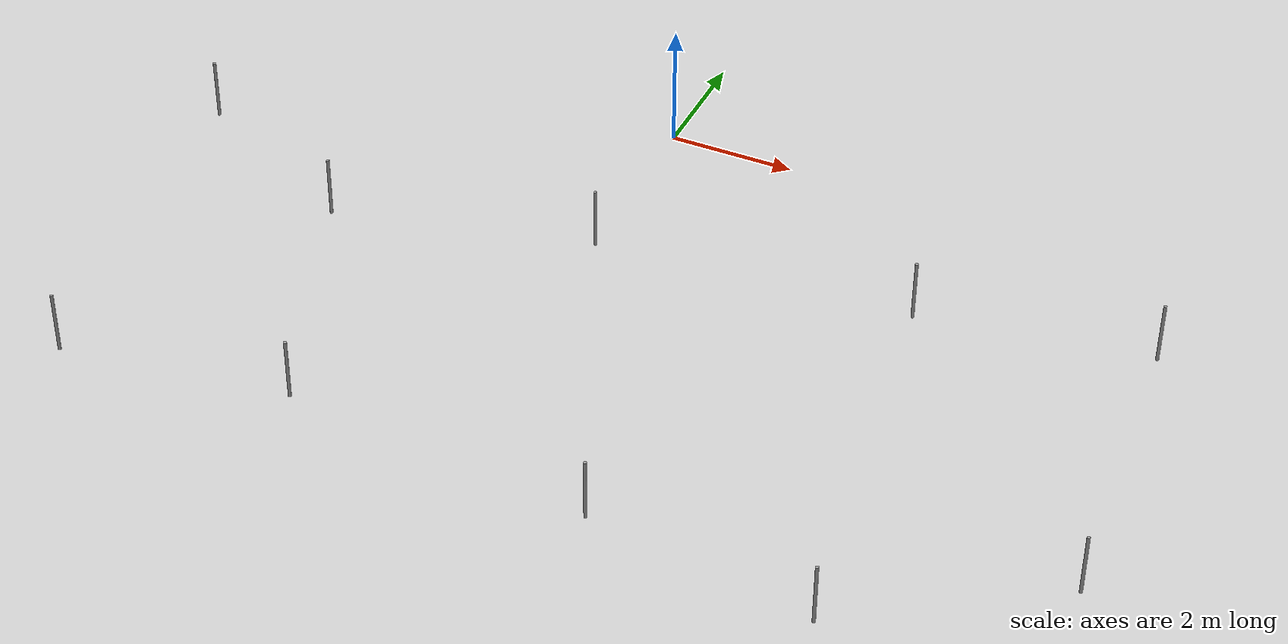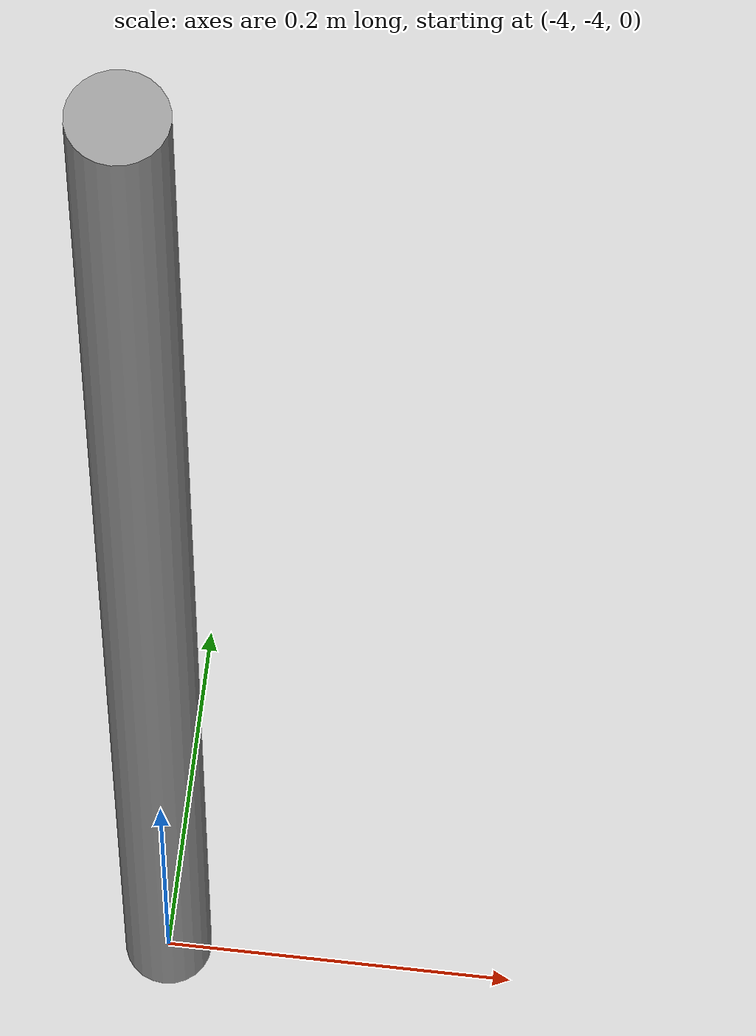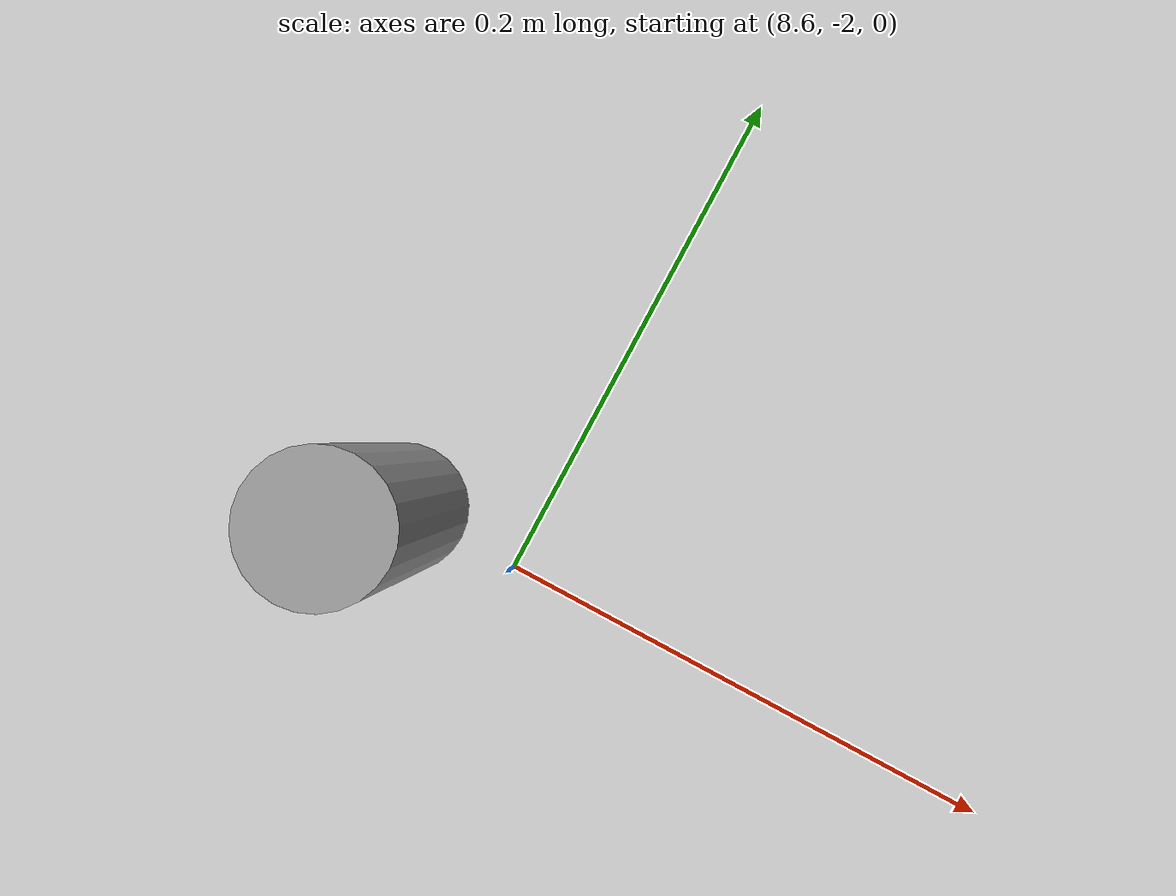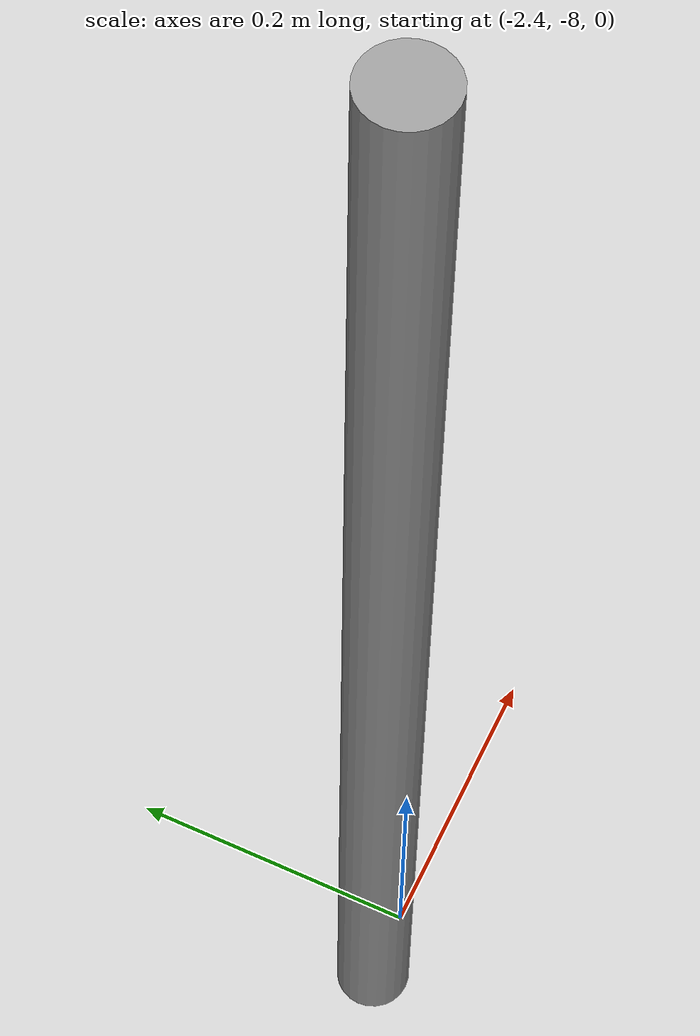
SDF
<sdf version="1.4">
 <world name="default">
  <light name="sun" type="directional">
   <pose>0 0 10 0 -0 0</pose>
   <diffuse>0.8 0.8 0.8 1</diffuse>
   <specular>0.2 0.2 0.2 1</specular>
   <attenuation>
    <range>1000</range>
    <constant>0.9</constant>
    <linear>0.01</linear>
    <quadratic>0.001</quadratic>
   </attenuation>
   <direction>-0.5 0.1 -0.9</direction>
  </light>
  <model name="ground_plane">
   <static>1</static>
   <link name="link">
    <collision name="collision">
     <geometry><plane><normal>0 0 1</normal><size>100 100</size></plane></geometry>
     <surface><friction><ode><mu>100</mu><mu2>50</mu2></ode></friction></surface>
    </collision>
    <visual name="visual">
     <cast_shadows>0</cast_shadows>
     <geometry><plane><normal>0 0 1</normal><size>100 100</size></plane></geometry>
     <material>
      <script><uri>file://media/materials/scripts/gazebo.material</uri><name>Gazebo/Grey</name></script>
     </material>
    </visual>
    <velocity_decay><linear>0</linear><angular>0</angular></velocity_decay>
   </link>
  </model>
  <physics type="ode">
   <max_step_size>0.001</max_step_size>
   <real_time_factor>1</real_time_factor>
   <real_time_update_rate>1000</real_time_update_rate>
   <gravity>0 0 -9.8</gravity>
  </physics>
  <scene><ambient>0.4 0.4 0.4 1</ambient><background>0.7 0.7 0.7 1</background><shadows>1</shadows></scene>
  <spherical_coordinates>
   <surface_model>EARTH_WGS84</surface_model>
   <latitude_deg>0</latitude_deg>
   <longitude_deg>0</longitude_deg>
   <elevation>0</elevation>
   <heading_deg>0</heading_deg>
  </spherical_coordinates>
  <model name="unit_cylinder_1">
   <pose>-6.90224 -2.49737 0.5 -2e-06 -2.1e-05 -1.2e-05</pose>
   <link name="link">
    <inertial>
     <mass>1</mass>
     <inertia><ixx>1</ixx><ixy>0</ixy><ixz>0</ixz><iyy>1</iyy><iyz>0</iyz><izz>1</izz></inertia>
    </inertial>
    <collision name="collision">
     <geometry><cylinder><radius>0.025</radius><length>1</length></cylinder></geometry>
    </collision>
    <visual name="visual">
     <geometry><cylinder><radius>0.025</radius><length>1</length></cylinder></geometry>
     <material>
      <script><uri>file://media/materials/scripts/gazebo.material</uri><name>Gazebo/Grey</name></script>
     </material>
    </visual>
    <velocity_decay><linear>0</linear><angular>0</angular></velocity_decay>
   </link>
   <static>0</static>
  </model>
  <model name="unit_cylinder_88">
   <pose>2.44618 -8.47201 0.5 -2e-06 -7e-06 -1.3e-05</pose>
   <link name="link">
    <inertial>
     <mass>1</mass>
     <inertia><ixx>1</ixx><ixy>0</ixy><ixz>0</ixz><iyy>1</iyy><iyz>0</iyz><izz>1</izz></inertia>
    </inertial>
    <collision name="collision">
     <geometry><cylinder><radius>0.025</radius><length>1</length></cylinder></geometry>
    </collision>
    <visual name="visual">
     <geometry><cylinder><radius>0.025</radius><length>1</length></cylinder></geometry>
     <material>
      <script><uri>file://media/materials/scripts/gazebo.material</uri><name>Gazebo/Grey</name></script>
     </material>
    </visual>
    <velocity_decay><linear>0</linear><angular>0</angular></velocity_decay>
   </link>
   <static>0</static>
  </model>
  <model name="unit_cylinder_33">
   <pose>0.024994 -3.00002 0.5 2e-06 9e-06 -4.1e-05</pose>
   <link name="link">
    <inertial>
     <mass>1</mass>
     <inertia><ixx>1</ixx><ixy>0</ixy><ixz>0</ixz><iyy>1</iyy><iyz>0</iyz><izz>1</izz></inertia>
    </inertial>
    <collision name="collision">
     <geometry><cylinder><radius>0.025</radius><length>1</length></cylinder></geometry>
    </collision>
    <visual name="visual">
     <geometry><cylinder><radius>0.025</radius><length>1</length></cylinder></geometry>
     <material>
      <script><uri>file://media/materials/scripts/gazebo.material</uri><name>Gazebo/Grey</name></script>
     </material>
    </visual>
    <velocity_decay><linear>0</linear><angular>0</angular></velocity_decay>
   </link>
   <static>0</static>
  </model>
  <model name="unit_cylinder_44">
   <pose>5 -2.59126 0.499991 -1e-06 -1e-06 -2e-06</pose>
   <link name="link">
    <inertial>
     <mass>1</mass>
     <inertia><ixx>1</ixx><ixy>0</ixy><ixz>0</ixz><iyy>1</iyy><iyz>0</iyz><izz>1</izz></inertia>
    </inertial>
    <collision name="collision">
     <geometry><cylinder><radius>0.025</radius><length>1</length></cylinder></geometry>
    </collision>
    <visual name="visual">
     <geometry><cylinder><radius>0.025</radius><length>1</length></cylinder></geometry>
     <material>
      <script><uri>file://media/materials/scripts/gazebo.material</uri><name>Gazebo/Grey</name></script>
     </material>
    </visual>
    <velocity_decay><linear>0</linear><angular>0</angular></velocity_decay>
   </link>
   <static>0</static>
  </model>
  <model name="unit_cylinder_66">
   <pose>-6 -8.51314 0.5 3.23117e-27 8e-06 2e-06</pose>
   <link name="link">
    <inertial>
     <mass>1</mass>
     <inertia><ixx>1</ixx><ixy>0</ixy><ixz>0</ixz><iyy>1</iyy><iyz>0</iyz><izz>1</izz></inertia>
    </inertial>
    <collision name="collision">
     <geometry><cylinder><radius>0.025</radius><length>1</length></cylinder></geometry>
    </collision>
    <visual name="visual">
     <geometry><cylinder><radius>0.025</radius><length>1</length></cylinder></geometry>
     <material>
      <script><uri>file://media/materials/scripts/gazebo.material</uri><name>Gazebo/Grey</name></script>
     </material>
    </visual>
    <velocity_decay><linear>0</linear><angular>0</angular></velocity_decay>
   </link>
   <static>0</static>
  </model>
  <model name="unit_cylinder_10">
   <pose>9 -7 0.5 -3e-06 4e-06 -3e-06</pose>
   <link name="link">
    <inertial>
     <mass>1</mass>
     <inertia><ixx>1</ixx><ixy>0</ixy><ixz>0</ixz><iyy>1</iyy><iyz>0</iyz><izz>1</izz></inertia>
    </inertial>
    <collision name="collision">
     <geometry><cylinder><radius>0.025</radius><length>1</length></cylinder></geometry>
    </collision>
    <visual name="visual">
     <geometry><cylinder><radius>0.025</radius><length>1</length></cylinder></geometry>
     <material>
      <script><uri>file://media/materials/scripts/gazebo.material</uri><name>Gazebo/Grey</name></script>
     </material>
    </visual>
    <velocity_decay><linear>0</linear><angular>0</angular></velocity_decay>
   </link>
   <static>0</static>
  </model>
  <model name="unit_cylinder_77">
   <pose>-2.4458 -8 0.499991 1e-06 4e-06 -1.6e-05</pose>
   <link name="link">
    <inertial>
     <mass>1</mass>
     <inertia><ixx>1</ixx><ixy>0</ixy><ixz>0</ixz><iyy>1</iyy><iyz>0</iyz><izz>1</izz></inertia>
    </inertial>
    <collision name="collision">
     <geometry><cylinder><radius>0.025</radius><length>1</length></cylinder></geometry>
    </collision>
    <visual name="visual">
     <geometry><cylinder><radius>0.025</radius><length>1</length></cylinder></geometry>
     <material>
      <script><uri>file://media/materials/scripts/gazebo.material</uri><name>Gazebo/Grey</name></script>
     </material>
    </visual>
    <velocity_decay><linear>0</linear><angular>0</angular></velocity_decay>
   </link>
   <static>0</static>
  </model>
  <model name="unit_cylinder_2">
   <pose>-3.99999 -4 0.5 -3e-06 2e-05 3e-06</pose>
   <link name="link">
    <inertial>
     <mass>1</mass>
     <inertia><ixx>1</ixx><ixy>0</ixy><ixz>0</ixz><iyy>1</iyy><iyz>0</iyz><izz>1</izz></inertia>
    </inertial>
    <collision name="collision">
     <geometry><cylinder><radius>0.025</radius><length>1</length></cylinder></geometry>
    </collision>
    <visual name="visual">
     <geometry><cylinder><radius>0.025</radius><length>1</length></cylinder></geometry>
     <material>
      <script><uri>file://media/materials/scripts/gazebo.material</uri><name>Gazebo/Grey</name></script>
     </material>
    </visual>
    <velocity_decay><linear>0</linear><angular>0</angular></velocity_decay>
   </link>
   <static>0</static>
  </model>
  <model name="unit_cylinder_55">
   <pose>8.55184 -2 0.5 -2e-06 -2e-06 4e-06</pose>
   <link name="link">
    <inertial>
     <mass>1</mass>
     <inertia><ixx>1</ixx><ixy>0</ixy><ixz>0</ixz><iyy>1</iyy><iyz>0</iyz><izz>1</izz></inertia>
    </inertial>
    <collision name="collision">
     <geometry><cylinder><radius>0.025</radius><length>1</length></cylinder></geometry>
    </collision>
    <visual name="visual">
     <geometry><cylinder><radius>0.025</radius><length>1</length></cylinder></geometry>
     <material>
      <script><uri>file://media/materials/scripts/gazebo.material</uri><name>Gazebo/Grey</name></script>
     </material>
    </visual>
    <velocity_decay><linear>0</linear><angular>0</angular></velocity_decay>
   </link>
   <static>0</static>
  </model>
  <model name="unit_cylinder_99">
   <pose>6.00001 -9 0.499991 3e-06 1.4e-05 -9e-06</pose>
   <link name="link">
    <inertial>
     <mass>1</mass>
     <inertia><ixx>1</ixx><ixy>0</ixy><ixz>0</ixz><iyy>1</iyy><iyz>0</iyz><izz>1</izz></inertia>
    </inertial>
    <collision name="collision">
     <geometry><cylinder><radius>0.025</radius><length>1</length></cylinder></geometry>
    </collision>
    <visual name="visual">
     <geometry><cylinder><radius>0.025</radius><length>1</length></cylinder></geometry>
     <material>
      <script><uri>file://media/materials/scripts/gazebo.material</uri><name>Gazebo/Grey</name></script>
     </material>
    </visual>
    <velocity_decay><linear>0</linear><angular>0</angular></velocity_decay>
   </link>
   <static>0</static>
  </model>
 </world>
</sdf>
